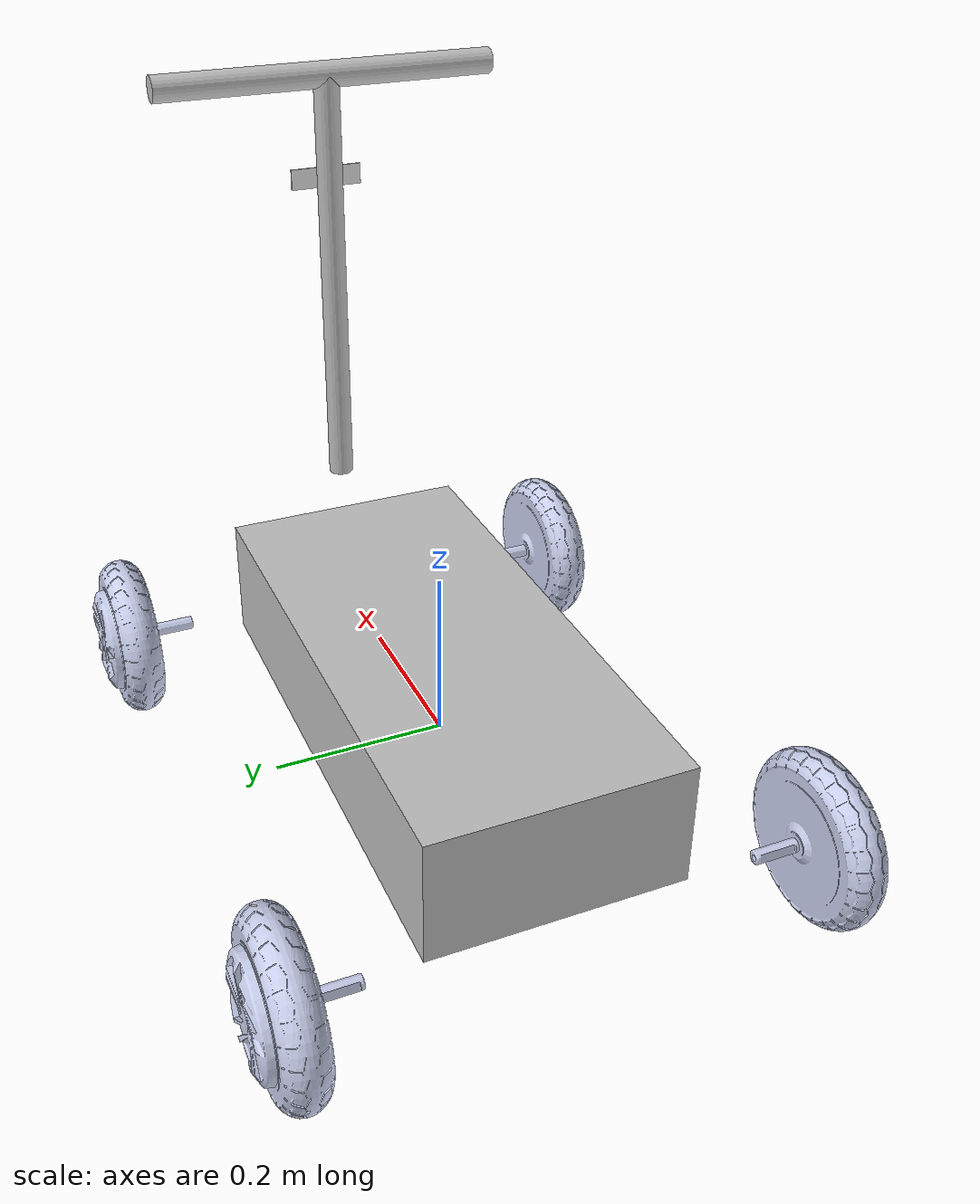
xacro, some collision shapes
<?xml version="1.0"?>
<robot xmlns:xacro="https://www.ros.org/wiki/xacro" name="robot">

    <xacro:include filename ="my_robot_core.xacro"/>
    <xacro:include filename="gazebo_control.xacro"/>
    <xacro:include filename="depth_camera.xacro"/>
    <xacro:include filename="robot_truth_odom.xacro"/>   <!-- true pose for the dataset pipeline -->

</robot>

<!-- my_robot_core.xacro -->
<robot name="my_robot" xmlns:xacro="http://www.ros.org/wiki/xacro">
  <xacro:include filename="inertial_macros.xacro" />

  <!-- BASE_LINK IS NOW AT THE EXACT CENTER OF THE FOUR WHEELS       -->
  <link name="base_link">

  </link>

  <!-- CHASSIS (the old "base") is now attached offset from the      -->
  <!-- centered base_link so everything stays in the same place      -->
  <joint name="chassis_joint" type="fixed">
    <parent link="base_link"/>
    <child link="chassis"/>
    <!-- This moves the entire old robot so base_link ends up in the middle -->
    <origin xyz="-0.3295 0.33054 0" rpy="0 0 0"/>
  </joint>

<link name="chassis">
   <xacro:inertial_box mass="25.0" x="0.6" y="0.4" z="0.2">
        <origin xyz="0.3539 -0.33747 0.041313" rpy="0 0 0"/>
    </xacro:inertial_box>

    <visual>
      <origin xyz="0 0 0" rpy="0 0 0"/>
      <geometry>
        <mesh filename="package://my_robot_description/models/my_robot_description/meshes/base_link.STL"/>
      </geometry>
      <material name="">
        <color rgba="0.75294 0.75294 0.75294 1"/>
      </material>
    </visual>

  <collision>
      <origin xyz="0.3539 -0.33747 0.041313" rpy="0 0 0"/>

      <geometry>
        <box size="0.65 0.30 0.15"/>
      </geometry>
    </collision>
  </link>

  <gazebo reference="chassis">
    <material>Gazebo/DarkGrey</material>
  </gazebo>

  <!-- WHEELS – now attached to the centered base_link               -->

  <!-- BACK LEFT -->
  <joint name="BL_joint" type="continuous">
    <parent link="base_link"/>
    <child link="BL_link"/>
    <origin xyz="-0.3295  0.33054 0" rpy="0 0 0"/>
    <axis xyz="0 1 0"/>
  </joint>

  <!-- BACK RIGHT -->
  <joint name="BR_joint" type="continuous">
    <parent link="base_link"/>
    <child link="BR_link"/>
    <origin xyz="-0.3295 -0.33054 0" rpy="0 0 0"/>
    <axis xyz="0 1 0"/>
  </joint>

  <!-- FRONT LEFT -->
  <joint name="FL_joint" type="continuous">
    <parent link="base_link"/>
    <child link="FL_link"/>
    <origin xyz="0.3295  0.33054 0" rpy="0 0 0"/>
    <axis xyz="0 1 0"/>
  </joint>

  <!-- FRONT RIGHT -->
  <joint name="FR_joint" type="continuous">
    <parent link="base_link"/>
    <child link="FR_link"/>
    <origin xyz="0.3295 -0.33054 0" rpy="0 0 0"/>
    <axis xyz="0 1 0"/>
  </joint>

  <!-- ==================== WHEEL LINKS (unchanged) ==================== -->
  <link name="BL_link">
  <xacro:inertial_cylinder mass="1.43" length="0.05" radius="0.0925">
        <origin xyz="0 0 0" rpy="0 0 0"/>
    </xacro:inertial_cylinder>
    <visual>
      <origin xyz="0 0 0" rpy="0 0 0"/>
      <geometry>
        <mesh filename="package://my_robot_description/models/my_robot_description/meshes/BL_link.STL"/>
      </geometry>
      <material name=""><color rgba="0.79216 0.81961 0.93333 1"/></material>
    </visual>
    <collision>
      <origin xyz="0 -0.03 0" rpy="${pi/2} 0 0"/>
      <geometry>
        <cylinder radius="0.0925" length="0.05"/>
      </geometry>
    </collision>
  </link>
  <gazebo reference="BL_link">
    <material>Gazebo/Grey</material>
<mu1>1.0</mu1>
    <mu2>0.5</mu2> <fdir1>1 0 0</fdir1>

    <kp>10000000.0</kp> <kd>100.0</kd>     <minDepth>0.001</minDepth>

  </gazebo>

  <link name="BR_link">
   <xacro:inertial_cylinder mass="1.43" length="0.05" radius="0.0925">
        <origin xyz="0 0 0" rpy="0 0 0"/>
    </xacro:inertial_cylinder>
    <visual>
      <origin xyz="0 0 0" rpy="0 0 0"/>
      <geometry>
        <mesh filename="package://my_robot_description/models/my_robot_description/meshes/BR_link.STL"/>
      </geometry>
      <material name=""><color rgba="0.79216 0.81961 0.93333 1"/></material>
    </visual>
    <collision>
      <origin xyz="0 0.03 0" rpy="${pi/2} 0 0"/>
      <geometry>
        <cylinder radius="0.0925" length="0.05"/>
      </geometry>
    </collision>
  </link>
  <gazebo reference="BR_link">
    <material>Gazebo/Grey</material>
   <mu1>1.0</mu1>
    <mu2>0.5</mu2> <fdir1>1 0 0</fdir1>

    <kp>10000000.0</kp> <kd>100.0</kd>     <minDepth>0.001</minDepth>

  </gazebo>

  <link name="FL_link">
  <xacro:inertial_cylinder mass="1.43" length="0.05" radius="0.0925">
        <origin xyz="0 0 0" rpy="0 0 0"/>
    </xacro:inertial_cylinder>
    <visual>
      <origin xyz="0 0 0" rpy="0 0 0"/>
      <geometry>
        <mesh filename="package://my_robot_description/models/my_robot_description/meshes/FL_link.STL"/>
      </geometry>
      <material name=""><color rgba="0.79216 0.81961 0.93333 1"/></material>
    </visual>
    <collision>
      <origin xyz="0 -0.03 0" rpy="${pi/2} 0 0"/>
      <geometry>
        <cylinder radius="0.0925" length="0.05"/>
      </geometry>
    </collision>
  </link>
  <gazebo reference="FL_link">
    <material>Gazebo/Grey</material>
   <mu1>1.0</mu1>
    <mu2>0.5</mu2> <fdir1>1 0 0</fdir1>

    <kp>10000000.0</kp> <kd>100.0</kd>     <minDepth>0.001</minDepth>

  </gazebo>

  <link name="FR_link">
   <xacro:inertial_cylinder mass="1.43" length="0.05" radius="0.0925">
        <origin xyz="0 0 0" rpy="0 0 0"/>
    </xacro:inertial_cylinder>
    <visual>
      <origin xyz="0 0 0" rpy="0 0 0"/>
      <geometry>
        <mesh filename="package://my_robot_description/models/my_robot_description/meshes/FR_link.STL"/>
      </geometry>
      <material name=""><color rgba="0.79216 0.81961 0.93333 1"/></material>
    </visual>
   <collision>
      <origin xyz="0 0.03 0" rpy="${pi/2} 0 0"/>
      <geometry>
        <cylinder radius="0.0925" length="0.05"/>
      </geometry>
    </collision>
  </link>
  <gazebo reference="FR_link">
    <material>Gazebo/Grey</material>
 <mu1>1.0</mu1>
    <mu2>0.5</mu2> <fdir1>1 0 0</fdir1>

    <kp>10000000.0</kp> <kd>100.0</kd>     <minDepth>0.001</minDepth>

    <minDepth>0.001</minDepth>
  </gazebo>

  <!-- HANDLE (also moved with the same offset) -->
  <joint name="handle_middle_joint" type="fixed">
    <parent link="base_link"/>
    <child link="handle_middle"/>
    <origin xyz="0.3355 0 0.43" rpy="0 0 0"/>
  </joint>

  <link name="handle_middle">
    <visual>
      <origin xyz="0 0 0"/>
      <geometry><cylinder length="0.5" radius="0.015"/></geometry>
       <material name="">
        <color rgba="0.75294 0.75294 0.75294 1"/>
      </material>
    </visual>
    <collision>
      <origin xyz="0 0 0"/>
      <geometry><cylinder length="0.5" radius="0.015"/></geometry>
    </collision>
    <xacro:inertial_cylinder mass="0.1" length="0.5" radius="0.015">
      <origin xyz="0 0 0" rpy="0 0 0"/>
    </xacro:inertial_cylinder>
  </link>
  <gazebo reference="handle_middle"><material>Gazebo/DarkGrey</material></gazebo>

  <joint name="handle_joint" type="fixed">
    <parent link="handle_middle"/>
    <child link="handle"/>
    <origin xyz="0 0 0.25" rpy="${pi/2} 0 0"/>
  </joint>

  <link name="handle">
    <visual>
      <origin xyz="0 0 0"/>
      <geometry><cylinder length="0.4" radius="0.015"/></geometry>
      <material name="">
        <color rgba="0.75294 0.75294 0.75294 1"/>
      </material>
    </visual>
    <collision>
      <origin xyz="0 0 0"/>
      <geometry><cylinder length="0.4" radius="0.015"/></geometry>
    </collision>
    <xacro:inertial_cylinder mass="0.1" length="0.4" radius="0.015">
      <origin xyz="0 0 0" rpy="0 0 0"/>
    </xacro:inertial_cylinder>
  </link>
  <gazebo reference="handle"><material>Gazebo/DarkGrey</material></gazebo>

  <!-- TRANSMISSIONS (unchanged) -->
  <transmission name="left_front_wheel_trans">
    <type>transmission_interface/SimpleTransmission</type>
    <joint name="FL_joint"><hardwareInterface>velocity</hardwareInterface></joint>
    <actuator name="left_front_wheel_motor"><hardwareInterface>velocity</hardwareInterface><mechanicalReduction>1</mechanicalReduction></actuator>
  </transmission>

  <transmission name="left_back_wheel_trans">
    <type>transmission_interface/SimpleTransmission</type>
    <joint name="BL_joint"><hardwareInterface>velocity</hardwareInterface></joint>
    <actuator name="left_back_wheel_motor"><hardwareInterface>velocity</hardwareInterface><mechanicalReduction>1</mechanicalReduction></actuator>
  </transmission>

  <transmission name="right_front_wheel_trans">
    <type>transmission_interface/SimpleTransmission</type>
    <joint name="FR_joint"><hardwareInterface>velocity</hardwareInterface></joint>
    <actuator name="right_front_wheel_motor"><hardwareInterface>velocity</hardwareInterface><mechanicalReduction>1</mechanicalReduction></actuator>
  </transmission>

  <transmission name="right_back_wheel_trans">
    <type>transmission_interface/SimpleTransmission</type>
    <joint name="BR_joint"><hardwareInterface>velocity</hardwareInterface></joint>
    <actuator name="right_back_wheel_motor"><hardwareInterface>velocity</hardwareInterface><mechanicalReduction>1</mechanicalReduction></actuator>
  </transmission>

</robot>

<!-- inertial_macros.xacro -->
<robot xmlns:xacro="http://www.ros.org/wiki/xacro" >

    <xacro:macro name="inertial_sphere" params="mass radius *origin">
        <inertial>
            <xacro:insert_block name="origin"/>
            <mass value="${mass}" />
            <inertia ixx="${(2/5) * mass * (radius*radius)}" ixy="0.0" ixz="0.0"
                    iyy="${(2/5) * mass * (radius*radius)}" iyz="0.0"
                    izz="${(2/5) * mass * (radius*radius)}" />
        </inertial>
    </xacro:macro>

    <xacro:macro name="inertial_box" params="mass x y z *origin">
        <inertial>
            <xacro:insert_block name="origin"/>
            <mass value="${mass}" />
            <inertia ixx="${(1/12) * mass * (y*y + z*z)}" ixy="0.0" ixz="0.0"
                    iyy="${(1/12) * mass * (x*x + z*z)}" iyz="0.0"
                    izz="${(1/12) * mass * (x*x + y*y)}" />
        </inertial>
    </xacro:macro>

    <xacro:macro name="inertial_cylinder" params="mass length radius *origin">
        <inertial>
            <xacro:insert_block name="origin"/>
            <mass value="${mass}" />
            <inertia ixx="${(1/12) * mass * (3*radius*radius + length*length)}" ixy="0.0" ixz="0.0"
                    iyy="${(1/12) * mass * (3*radius*radius + length*length)}" iyz="0.0"
                    izz="${(1/2) * mass * (radius*radius)}" />
        </inertial>
    </xacro:macro>

</robot>

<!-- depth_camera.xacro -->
<robot xmlns:xacro="http://www.ros.org/wiki/xacro">

  <!-- ================= IGNITION SENSORS SYSTEM PLUGIN ================= -->
  <!-- Required for Gazebo Fortress to activate rendering engines for camera feeds -->
  <gazebo>
    <plugin
      filename="ignition-gazebo-sensors-system"
      name="ignition::gazebo::systems::Sensors">
      <render_engine>ogre2</render_engine>
    </plugin>
  </gazebo>

  <!-- Depth camera back link (box) -->
  <joint name="depth_camera_back_joint" type="fixed">
    <parent link="handle_middle"/>
    <child link="depth_camera_back_link"/>
    <origin xyz="0.015 0 0.13" rpy="0 0 0"/>
  </joint>

  <link name="depth_camera_back_link">
    <visual>
      <geometry><box size="0.0016 0.085 0.024"/></geometry>
    </visual>
    <collision>
      <geometry><box size="0.0016 0.085 0.024"/></geometry>
    </collision>
    <xacro:inertial_box mass="0.05" x="0.0016" y="0.085" z="0.024">
      <origin xyz="0 0 0" rpy="0 0 0"/>
    </xacro:inertial_box>
  </link>
  <gazebo reference="depth_camera_back_link"><material>Gazebo/White</material></gazebo>

  <!-- ================= LEFT CAMERA ================= -->
  <joint name="left_camera_joint" type="fixed">
    <parent link="depth_camera_back_link"/>
    <child link="left_camera_link"/>
    <origin xyz="0.0058 -0.03 0" rpy="0 0 0"/>
  </joint>

  <link name="left_camera_link">
    <visual>
      <geometry><box size = "0.01 0.0155 0.0155"/></geometry>
    </visual>
    <collision>
      <geometry><box size = "0.01 0.0155 0.0155"/></geometry>
    </collision>
    <xacro:inertial_box mass="0.02" x="0.01" y="0.0155" z="0.0155">
      <origin xyz="0 0 0" rpy="0 0 0"/>
    </xacro:inertial_box>
  </link>

  <gazebo reference="left_camera_link">
    <material>Gazebo/Black</material>
    <!-- IGNITION FORTRESS SENSOR TAG -->
    <sensor type="rgbd_camera" name="left_camera">
      <ignition_frame_id>left_camera_link_optical</ignition_frame_id>
      <always_on>true</always_on>
      <visualize>true</visualize>
      <update_rate>30</update_rate>
      <topic>depth_cam/left</topic>
      <camera>
        <horizontal_fov>1.27409</horizontal_fov>
        <image>
          <width>640</width>
          <height>480</height>
          <format>R8G8B8</format>
        </image>
        <clip>
          <near>0.02</near>
          <far>8.0</far>
        </clip>
        <lens>
          <intrinsics>
            <!-- fx = fy = width / (2 * tan(horizontal_fov/2)), computed for horizontal_fov=1.27409, width=640 -->
            <fx>432.43</fx>
            <fy>432.43</fy>
            <!-- cx = (width-1)/2, cy = (height-1)/2 -->
            <cx>319.5</cx>
            <cy>239.5</cy>
            <s>0</s>
          </intrinsics>
        </lens>
      </camera>
    </sensor>
  </gazebo>

  <!-- Left optical frame -->
  <joint name="left_camera_optical_joint" type="fixed">
    <parent link="left_camera_link"/>
    <child link="left_camera_link_optical"/>
    <origin xyz="0.01 0 0" rpy="${-pi/2} 0 ${-pi/2}"/>
  </joint>
  <link name="left_camera_link_optical"/>

  <!-- ================= RIGHT CAMERA ================= -->
  <joint name="right_camera_joint" type="fixed">
    <parent link="depth_camera_back_link"/>
    <child link="right_camera_link"/>
    <origin xyz="0.0058 0.03 0" rpy="0 0 0"/>
  </joint>

  <link name="right_camera_link">
    <visual>
      <geometry><box size = "0.01 0.0155 0.0155"/></geometry>
    </visual>
    <collision>
      <geometry><box size = "0.01 0.0155 0.0155"/></geometry>
    </collision>
    <xacro:inertial_box mass="0.02" x="0.01" y="0.0155" z="0.0155">
      <origin xyz="0 0 0" rpy="0 0 0"/>
    </xacro:inertial_box>
  </link>

  <gazebo reference="right_camera_link">
    <material>Gazebo/Black</material>
    <!-- IGNITION FORTRESS SENSOR TAG -->
    <sensor type="rgbd_camera" name="right_camera">
    <ignition_frame_id>right_camera_link_optical</ignition_frame_id>
      <always_on>true</always_on>
      <visualize>true</visualize>
      <update_rate>30</update_rate>
      <topic>depth_cam/right</topic>
      <camera>
        <horizontal_fov>1.27409</horizontal_fov>
        <image>
          <width>640</width>
          <height>480</height>
          <format>R8G8B8</format>
        </image>
        <clip>
          <near>0.02</near>
          <far>8.0</far>
        </clip>
        <lens>
          <intrinsics>
            <!-- fx = fy = width / (2 * tan(horizontal_fov/2)), computed for horizontal_fov=1.27409, width=640 -->
            <fx>432.43</fx>
            <fy>432.43</fy>
            <!-- cx = (width-1)/2, cy = (height-1)/2 -->
            <cx>319.5</cx>
            <cy>239.5</cy>
            <s>0</s>
          </intrinsics>
        </lens>
      </camera>
    </sensor>
  </gazebo>

  <!-- Right optical frame -->
  <joint name="right_camera_optical_joint" type="fixed">
    <parent link="right_camera_link"/>
    <child link="right_camera_link_optical"/>
    <origin xyz="0.01 0 0" rpy="${-pi/2} 0 ${-pi/2}"/>
  </joint>
  <link name="right_camera_link_optical"/>

</robot>
